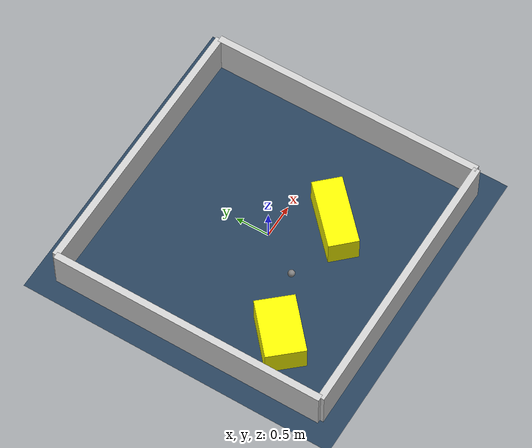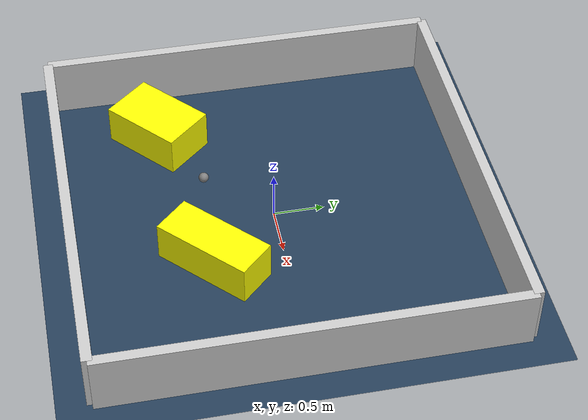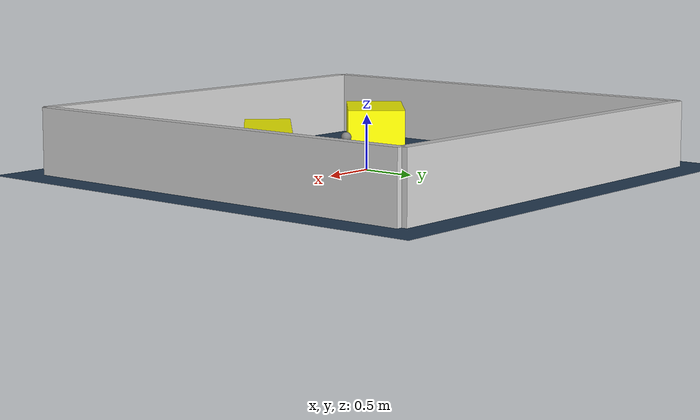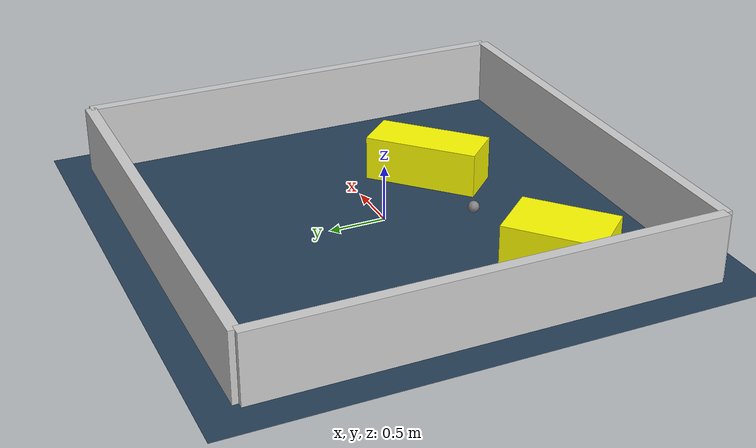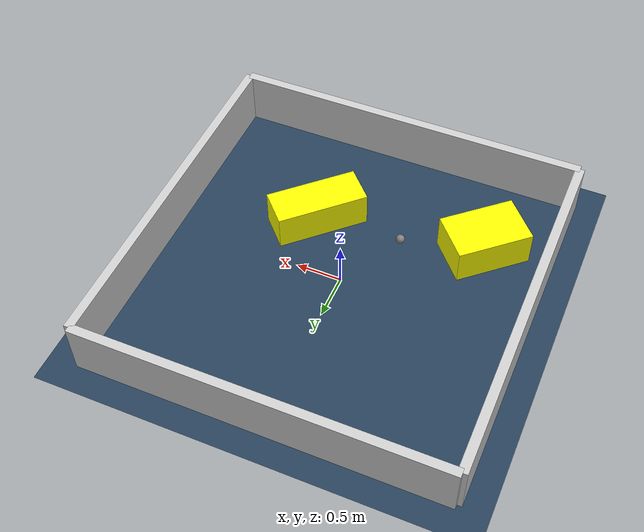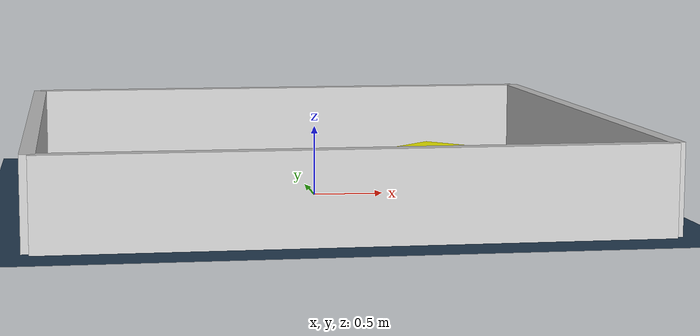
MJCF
<?xml version="1.0" ?>
<mujoco model="generated_environment">
  <option timestep="0.01" integrator="RK4" cone="elliptic"/>
  <default>
    <geom density="1"/>
  </default>
  <asset>
    <texture builtin="gradient" height="3072" rgb1="0.3 0.5 0.7" rgb2="0 0 0" type="skybox" width="512"/>
    <texture builtin="checker" height="300" mark="edge" markrgb="0.8 0.8 0.8" name="groundplane" rgb1="0.2 0.3 0.4" rgb2="0.1 0.2 0.3" type="2d" width="300"/>
    <material name="groundplane" reflectance="0.2" texrepeat="5 5" texture="groundplane" texuniform="true"/>
    <material name="robot" rgba="0.0 1.0 0.0 1"/>
  </asset>
  <worldbody>
    <light dir="0 0 -1" directional="true" pos="0 0 1.5"/>
    <geom condim="4" friction="1.0 0.005 0.001" material="groundplane" name="floor" size="0 0 0.05" type="plane"/>
    <body name="walls">
      <geom name="wall_1" condim="4" pos="-2.0 0.0 0.3" rgba="0.800000011920929 0.800000011920929 0.800000011920929 1.0" size="0.05 2.0 0.3" type="box"/>
      <geom name="wall_2" condim="4" pos="2.0 0.0 0.3" rgba="0.800000011920929 0.800000011920929 0.800000011920929 1.0" size="0.05 2.0 0.3" type="box"/>
      <geom name="wall_3" condim="4" pos="0.0 -2.0 0.3" rgba="0.800000011920929 0.800000011920929 0.800000011920929 1.0" size="2.0 0.05 0.3" type="box"/>
      <geom name="wall_4" condim="4" pos="0.0 2.0 0.3" rgba="0.800000011920929 0.800000011920929 0.800000011920929 1.0" size="2.0 0.05 0.3" type="box"/>
    </body>
    <body name="robot">
      <joint name="joint_x" type="slide" pos="0 0 0" axis="1 0 0"/>
      <joint name="joint_y" type="slide" pos="0 0 0" axis="0 1 0"/>
      <geom name="robot" type="sphere" pos="-0.43947255034612565 -0.624521218965822 0.2" size="0.05" mass="5." friction="1.0 0.005 0.0001" condim="4"/>
      <site name="sensor_ball"/>
    </body>
    <body name="obstacle_1_movable">
      <geom name="obstacle_1_movable" condim="4" pos="0.5662755541884343 -0.6861322977302637 0.2" euler="0 0 43.72058420849915" friction="1.0 0.005 0.001" rgba="1 1 0 1" size="0.5093642823722861 0.2113920955757294 0.2" type="box" mass="0.1"/>
      <joint type="free"/>
    </body>
    <body name="obstacle_2_movable">
      <geom name="obstacle_2_movable" condim="4" pos="-1.27926793264235 -0.9660546142219266 0.2" euler="0 0 41.649205545327945" friction="1.0 0.005 0.001" rgba="1 1 0 1" size="0.42211917303846075 0.27593672127229035 0.2" type="box" mass="0.1"/>
      <joint type="free"/>
    </body>
  </worldbody>
  <actuator>
    <motor name="actuator_x" joint="joint_x" gear="1" ctrlrange="-1 1"/>
    <motor name="actuator_y" joint="joint_y" gear="1" ctrlrange="-1 1"/>
  </actuator>
</mujoco>
